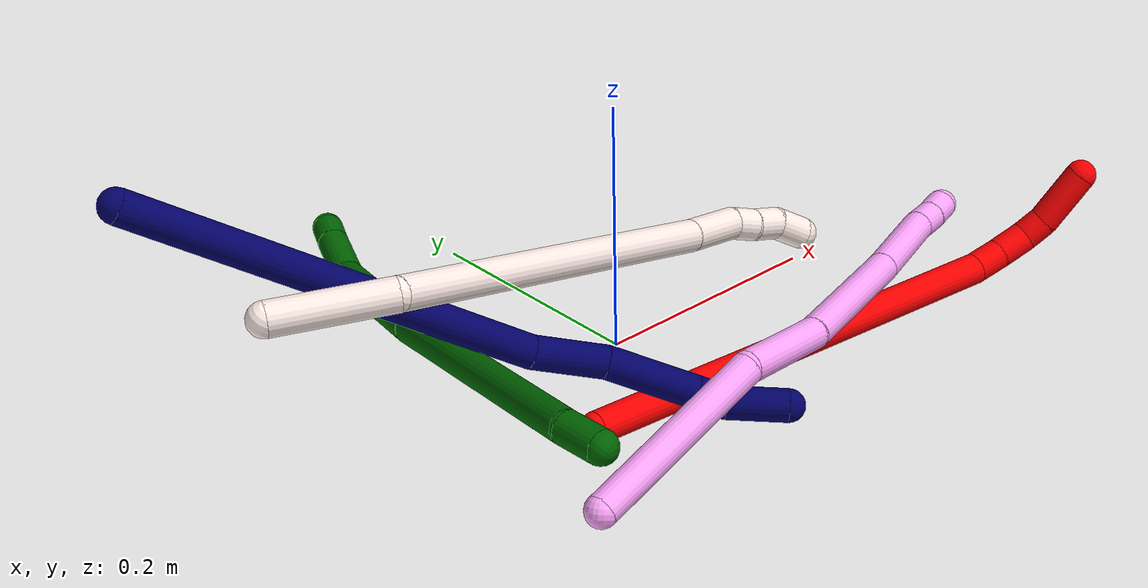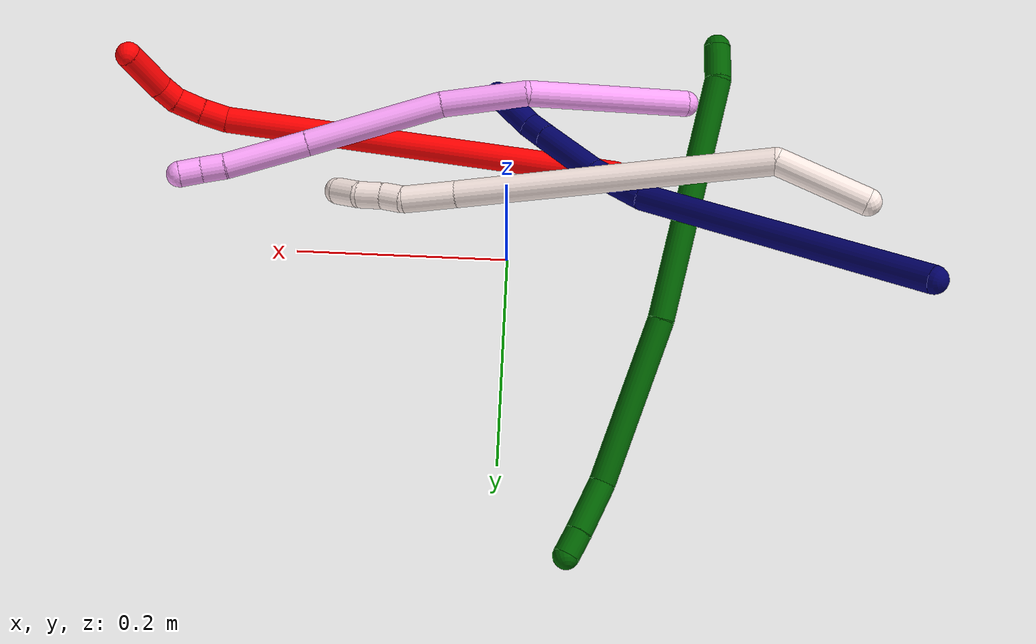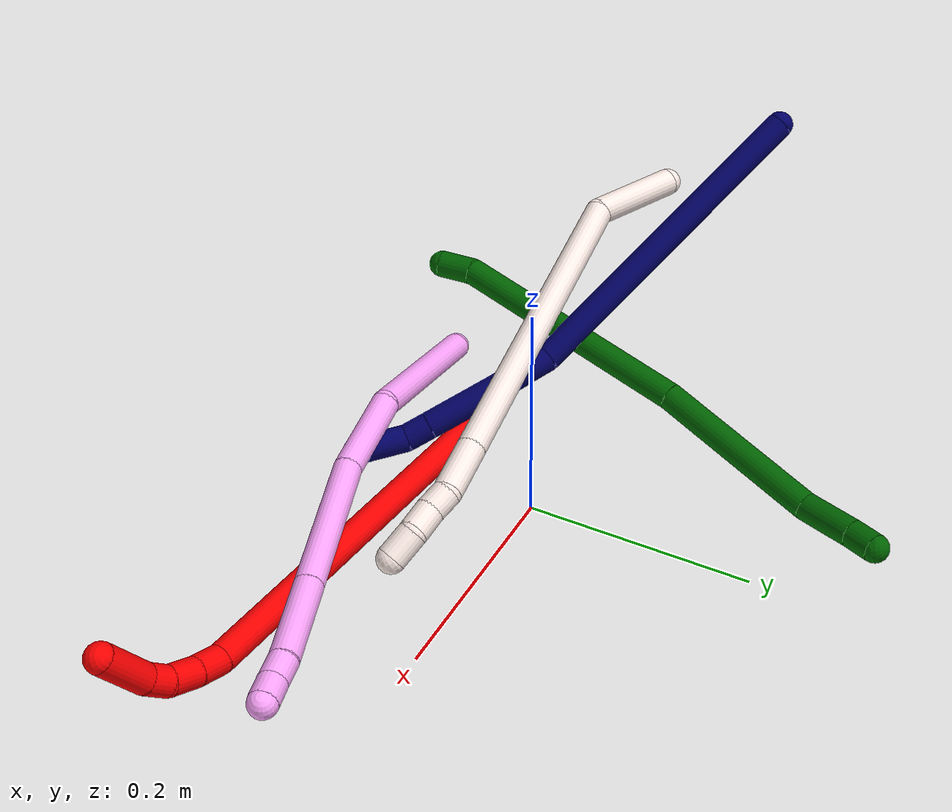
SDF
<sdf version="1.7">
 <world name="default">
  <model name="2">
   <static>0</static>
   <link name="2">
    <collision name="collision-cylinder-e_1_1_4">
     <pose>0.188315 -0.006573 0.024079 0.266497 1.43902 0.233825</pose>
     <geometry><cylinder><radius>0.0125</radius><length>0.379923</length></cylinder></geometry>
     <surface>
      <friction><ode><mu>1.16</mu><mu2>1.16</mu2><slip1>0</slip1><slip2>0</slip2></ode></friction>
      <contact><ode><kp>1e+06</kp><kd>1</kd><max_vel>0</max_vel><min_depth>0.001</min_depth></ode></contact>
     </surface>
    </collision>
    <visual name="visual-cylinder-e_1_1_4">
     <pose>0.188315 -0.006573 0.024079 0.266497 1.43902 0.233825</pose>
     <geometry><cylinder><radius>0.0125</radius><length>0.379923</length></cylinder></geometry>
     <material><ambient>1 0 0 1</ambient></material>
    </visual>
    <collision name="collision-cylinder-e_2_4_5">
     <pose>0.388958 -0.010228 0.048874 -1.33031 1.33172 -1.10446</pose>
     <geometry><cylinder><radius>0.0125</radius><length>0.025379</length></cylinder></geometry>
     <surface>
      <friction><ode><mu>1.16</mu><mu2>1.16</mu2><slip1>0</slip1><slip2>0</slip2></ode></friction>
      <contact><ode><kp>1e+06</kp><kd>1</kd><max_vel>0</max_vel><min_depth>0.001</min_depth></ode></contact>
     </surface>
    </collision>
    <visual name="visual-cylinder-e_2_4_5">
     <pose>0.388958 -0.010228 0.048874 -1.33031 1.33172 -1.10446</pose>
     <geometry><cylinder><radius>0.0125</radius><length>0.025379</length></cylinder></geometry>
     <material><ambient>1 0 0 1</ambient></material>
    </visual>
    <collision name="collision-cylinder-e_3_5_6">
     <pose>0.413849 -0.002646 0.050125 -1.45635 1.21315 -1.10804</pose>
     <geometry><cylinder><radius>0.0125</radius><length>0.026821</length></cylinder></geometry>
     <surface>
      <friction><ode><mu>1.16</mu><mu2>1.16</mu2><slip1>0</slip1><slip2>0</slip2></ode></friction>
      <contact><ode><kp>1e+06</kp><kd>1</kd><max_vel>0</max_vel><min_depth>0.001</min_depth></ode></contact>
     </surface>
    </collision>
    <visual name="visual-cylinder-e_3_5_6">
     <pose>0.413849 -0.002646 0.050125 -1.45635 1.21315 -1.10804</pose>
     <geometry><cylinder><radius>0.0125</radius><length>0.026821</length></cylinder></geometry>
     <material><ambient>1 0 0 1</ambient></material>
    </visual>
    <collision name="collision-cylinder-e_4_6_7">
     <pose>0.43408 0.008692 0.050838 -1.54432 0.854495 -0.834701</pose>
     <geometry><cylinder><radius>0.0125</radius><length>0.020337</length></cylinder></geometry>
     <surface>
      <friction><ode><mu>1.16</mu><mu2>1.16</mu2><slip1>0</slip1><slip2>0</slip2></ode></friction>
      <contact><ode><kp>1e+06</kp><kd>1</kd><max_vel>0</max_vel><min_depth>0.001</min_depth></ode></contact>
     </surface>
    </collision>
    <visual name="visual-cylinder-e_4_6_7">
     <pose>0.43408 0.008692 0.050838 -1.54432 0.854495 -0.834701</pose>
     <geometry><cylinder><radius>0.0125</radius><length>0.020337</length></cylinder></geometry>
     <material><ambient>1 0 0 1</ambient></material>
    </visual>
    <collision name="collision-cylinder-e_5_7_2">
     <pose>0.456087 0.033931 0.047168 -1.77514 0.647488 -0.781989</pose>
     <geometry><cylinder><radius>0.0125</radius><length>0.04754</length></cylinder></geometry>
     <surface>
      <friction><ode><mu>1.16</mu><mu2>1.16</mu2><slip1>0</slip1><slip2>0</slip2></ode></friction>
      <contact><ode><kp>1e+06</kp><kd>1</kd><max_vel>0</max_vel><min_depth>0.001</min_depth></ode></contact>
     </surface>
    </collision>
    <visual name="visual-cylinder-e_5_7_2">
     <pose>0.456087 0.033931 0.047168 -1.77514 0.647488 -0.781989</pose>
     <geometry><cylinder><radius>0.0125</radius><length>0.04754</length></cylinder></geometry>
     <material><ambient>1 0 0 1</ambient></material>
    </visual>
    <collision name="collision-sphere-2">
     <pose>0.470425 0.052495 0.04332 0 -0 0</pose>
     <geometry><sphere><radius>0.0125</radius></sphere></geometry>
     <surface>
      <friction><ode><mu>1.16</mu><mu2>1.16</mu2><slip1>0</slip1><slip2>0</slip2></ode></friction>
      <contact><ode><kp>1e+06</kp><kd>1</kd><max_vel>0</max_vel><min_depth>0.001</min_depth></ode></contact>
     </surface>
    </collision>
    <visual name="visual-sphere-2">
     <pose>0.470425 0.052495 0.04332 0 -0 0</pose>
     <geometry><sphere><radius>0.0125</radius></sphere></geometry>
     <material><ambient>1 0 0 1</ambient></material>
    </visual>
    <collision name="collision-sphere-7">
     <pose>0.441749 0.015366 0.051015 0 -0 0</pose>
     <geometry><sphere><radius>0.0125</radius></sphere></geometry>
     <surface>
      <friction><ode><mu>1.16</mu><mu2>1.16</mu2><slip1>0</slip1><slip2>0</slip2></ode></friction>
      <contact><ode><kp>1e+06</kp><kd>1</kd><max_vel>0</max_vel><min_depth>0.001</min_depth></ode></contact>
     </surface>
    </collision>
    <visual name="visual-sphere-7">
     <pose>0.441749 0.015366 0.051015 0 -0 0</pose>
     <geometry><sphere><radius>0.0125</radius></sphere></geometry>
     <material><ambient>1 0 0 1</ambient></material>
    </visual>
    <collision name="collision-sphere-6">
     <pose>0.426411 0.002018 0.050662 0 -0 0</pose>
     <geometry><sphere><radius>0.0125</radius></sphere></geometry>
     <surface>
      <friction><ode><mu>1.16</mu><mu2>1.16</mu2><slip1>0</slip1><slip2>0</slip2></ode></friction>
      <contact><ode><kp>1e+06</kp><kd>1</kd><max_vel>0</max_vel><min_depth>0.001</min_depth></ode></contact>
     </surface>
    </collision>
    <visual name="visual-sphere-6">
     <pose>0.426411 0.002018 0.050662 0 -0 0</pose>
     <geometry><sphere><radius>0.0125</radius></sphere></geometry>
     <material><ambient>1 0 0 1</ambient></material>
    </visual>
    <collision name="collision-sphere-5">
     <pose>0.401287 -0.00731 0.049589 0 -0 0</pose>
     <geometry><sphere><radius>0.0125</radius></sphere></geometry>
     <surface>
      <friction><ode><mu>1.16</mu><mu2>1.16</mu2><slip1>0</slip1><slip2>0</slip2></ode></friction>
      <contact><ode><kp>1e+06</kp><kd>1</kd><max_vel>0</max_vel><min_depth>0.001</min_depth></ode></contact>
     </surface>
    </collision>
    <visual name="visual-sphere-5">
     <pose>0.401287 -0.00731 0.049589 0 -0 0</pose>
     <geometry><sphere><radius>0.0125</radius></sphere></geometry>
     <material><ambient>1 0 0 1</ambient></material>
    </visual>
    <collision name="collision-sphere-1">
     <geometry><sphere><radius>0.0125</radius></sphere></geometry>
     <surface>
      <friction><ode><mu>1.16</mu><mu2>1.16</mu2><slip1>0</slip1><slip2>0</slip2></ode></friction>
      <contact><ode><kp>1e+06</kp><kd>1</kd><max_vel>0</max_vel><min_depth>0.001</min_depth></ode></contact>
     </surface>
    </collision>
    <visual name="visual-sphere-1">
     <geometry><sphere><radius>0.0125</radius></sphere></geometry>
     <material><ambient>1 0 0 1</ambient></material>
    </visual>
    <collision name="collision-sphere-4">
     <pose>0.37663 -0.013147 0.048158 0 -0 0</pose>
     <geometry><sphere><radius>0.0125</radius></sphere></geometry>
     <surface>
      <friction><ode><mu>1.16</mu><mu2>1.16</mu2><slip1>0</slip1><slip2>0</slip2></ode></friction>
      <contact><ode><kp>1e+06</kp><kd>1</kd><max_vel>0</max_vel><min_depth>0.001</min_depth></ode></contact>
     </surface>
    </collision>
    <visual name="visual-sphere-4">
     <pose>0.37663 -0.013147 0.048158 0 -0 0</pose>
     <geometry><sphere><radius>0.0125</radius></sphere></geometry>
     <material><ambient>1 0 0 1</ambient></material>
    </visual>
    <inertial>
     <pose>0.246053 -0.002076 0.030018 0 -0 0</pose>
     <mass>0.5</mass>
     <inertia>
      <ixx>0.000762</ixx>
      <ixy>0</ixy>
      <ixz>0</ixz>
      <iyy>0.004724</iyy>
      <iyz>0</iyz>
      <izz>-0.004406</izz>
     </inertia>
    </inertial>
   </link>
   <pose>-0.1007 -0.088553 0.011497 2.15232 -0.099073 -0.016593</pose>
  </model>
  <model name="4">
   <static>0</static>
   <link name="4">
    <collision name="collision-cylinder-e_1_1_4">
     <pose>0.063424 0.019611 0.044078 -0.41861 0.920508 -0.209843</pose>
     <geometry><cylinder><radius>0.0125</radius><length>0.159375</length></cylinder></geometry>
     <surface>
      <friction><ode><mu>1.16</mu><mu2>1.16</mu2><slip1>0</slip1><slip2>0</slip2></ode></friction>
      <contact><ode><kp>1e+06</kp><kd>1</kd><max_vel>0</max_vel><min_depth>0.001</min_depth></ode></contact>
     </surface>
    </collision>
    <visual name="visual-cylinder-e_1_1_4">
     <pose>0.063424 0.019611 0.044078 -0.41861 0.920508 -0.209843</pose>
     <geometry><cylinder><radius>0.0125</radius><length>0.159375</length></cylinder></geometry>
     <material><ambient>1 0.65098 0.996078 1</ambient></material>
    </visual>
    <collision name="collision-cylinder-e_2_4_5">
     <pose>0.163756 0.055548 0.097233 -1.06341 1.10227 -0.69386</pose>
     <geometry><cylinder><radius>0.0125</radius><length>0.082732</length></cylinder></geometry>
     <surface>
      <friction><ode><mu>1.16</mu><mu2>1.16</mu2><slip1>0</slip1><slip2>0</slip2></ode></friction>
      <contact><ode><kp>1e+06</kp><kd>1</kd><max_vel>0</max_vel><min_depth>0.001</min_depth></ode></contact>
     </surface>
    </collision>
    <visual name="visual-cylinder-e_2_4_5">
     <pose>0.163756 0.055548 0.097233 -1.06341 1.10227 -0.69386</pose>
     <geometry><cylinder><radius>0.0125</radius><length>0.082732</length></cylinder></geometry>
     <material><ambient>1 0.65098 0.996078 1</ambient></material>
    </visual>
    <collision name="collision-cylinder-e_3_5_6">
     <pose>0.253405 0.108123 0.125556 -1.08269 0.909505 -0.571839</pose>
     <geometry><cylinder><radius>0.0125</radius><length>0.133656</length></cylinder></geometry>
     <surface>
      <friction><ode><mu>1.16</mu><mu2>1.16</mu2><slip1>0</slip1><slip2>0</slip2></ode></friction>
      <contact><ode><kp>1e+06</kp><kd>1</kd><max_vel>0</max_vel><min_depth>0.001</min_depth></ode></contact>
     </surface>
    </collision>
    <visual name="visual-cylinder-e_3_5_6">
     <pose>0.253405 0.108123 0.125556 -1.08269 0.909505 -0.571839</pose>
     <geometry><cylinder><radius>0.0125</radius><length>0.133656</length></cylinder></geometry>
     <material><ambient>1 0.65098 0.996078 1</ambient></material>
    </visual>
    <collision name="collision-cylinder-e_4_6_7">
     <pose>0.336674 0.165978 0.159047 -0.987946 0.867626 -0.488937</pose>
     <geometry><cylinder><radius>0.0125</radius><length>0.080042</length></cylinder></geometry>
     <surface>
      <friction><ode><mu>1.16</mu><mu2>1.16</mu2><slip1>0</slip1><slip2>0</slip2></ode></friction>
      <contact><ode><kp>1e+06</kp><kd>1</kd><max_vel>0</max_vel><min_depth>0.001</min_depth></ode></contact>
     </surface>
    </collision>
    <visual name="visual-cylinder-e_4_6_7">
     <pose>0.336674 0.165978 0.159047 -0.987946 0.867626 -0.488937</pose>
     <geometry><cylinder><radius>0.0125</radius><length>0.080042</length></cylinder></geometry>
     <material><ambient>1 0.65098 0.996078 1</ambient></material>
    </visual>
    <collision name="collision-cylinder-e_5_7_8">
     <pose>0.376629 0.192544 0.176985 -0.930529 0.990211 -0.529425</pose>
     <geometry><cylinder><radius>0.0125</radius><length>0.02255</length></cylinder></geometry>
     <surface>
      <friction><ode><mu>1.16</mu><mu2>1.16</mu2><slip1>0</slip1><slip2>0</slip2></ode></friction>
      <contact><ode><kp>1e+06</kp><kd>1</kd><max_vel>0</max_vel><min_depth>0.001</min_depth></ode></contact>
     </surface>
    </collision>
    <visual name="visual-cylinder-e_5_7_8">
     <pose>0.376629 0.192544 0.176985 -0.930529 0.990211 -0.529425</pose>
     <geometry><cylinder><radius>0.0125</radius><length>0.02255</length></cylinder></geometry>
     <material><ambient>1 0.65098 0.996078 1</ambient></material>
    </visual>
    <collision name="collision-cylinder-e_6_8_2">
     <pose>0.394591 0.202561 0.185007 -0.862999 0.908458 -0.442292</pose>
     <geometry><cylinder><radius>0.0125</radius><length>0.021645</length></cylinder></geometry>
     <surface>
      <friction><ode><mu>1.16</mu><mu2>1.16</mu2><slip1>0</slip1><slip2>0</slip2></ode></friction>
      <contact><ode><kp>1e+06</kp><kd>1</kd><max_vel>0</max_vel><min_depth>0.001</min_depth></ode></contact>
     </surface>
    </collision>
    <visual name="visual-cylinder-e_6_8_2">
     <pose>0.394591 0.202561 0.185007 -0.862999 0.908458 -0.442292</pose>
     <geometry><cylinder><radius>0.0125</radius><length>0.021645</length></cylinder></geometry>
     <material><ambient>1 0.65098 0.996078 1</ambient></material>
    </visual>
    <collision name="collision-sphere-2">
     <pose>0.403125 0.207617 0.189334 0 -0 0</pose>
     <geometry><sphere><radius>0.0125</radius></sphere></geometry>
     <surface>
      <friction><ode><mu>1.16</mu><mu2>1.16</mu2><slip1>0</slip1><slip2>0</slip2></ode></friction>
      <contact><ode><kp>1e+06</kp><kd>1</kd><max_vel>0</max_vel><min_depth>0.001</min_depth></ode></contact>
     </surface>
    </collision>
    <visual name="visual-sphere-2">
     <pose>0.403125 0.207617 0.189334 0 -0 0</pose>
     <geometry><sphere><radius>0.0125</radius></sphere></geometry>
     <material><ambient>1 0.65098 0.996078 1</ambient></material>
    </visual>
    <collision name="collision-sphere-4">
     <pose>0.126848 0.039221 0.088157 0 -0 0</pose>
     <geometry><sphere><radius>0.0125</radius></sphere></geometry>
     <surface>
      <friction><ode><mu>1.16</mu><mu2>1.16</mu2><slip1>0</slip1><slip2>0</slip2></ode></friction>
      <contact><ode><kp>1e+06</kp><kd>1</kd><max_vel>0</max_vel><min_depth>0.001</min_depth></ode></contact>
     </surface>
    </collision>
    <visual name="visual-sphere-4">
     <pose>0.126848 0.039221 0.088157 0 -0 0</pose>
     <geometry><sphere><radius>0.0125</radius></sphere></geometry>
     <material><ambient>1 0.65098 0.996078 1</ambient></material>
    </visual>
    <collision name="collision-sphere-1">
     <geometry><sphere><radius>0.0125</radius></sphere></geometry>
     <surface>
      <friction><ode><mu>1.16</mu><mu2>1.16</mu2><slip1>0</slip1><slip2>0</slip2></ode></friction>
      <contact><ode><kp>1e+06</kp><kd>1</kd><max_vel>0</max_vel><min_depth>0.001</min_depth></ode></contact>
     </surface>
    </collision>
    <visual name="visual-sphere-1">
     <geometry><sphere><radius>0.0125</radius></sphere></geometry>
     <material><ambient>1 0.65098 0.996078 1</ambient></material>
    </visual>
    <collision name="collision-sphere-8">
     <pose>0.386056 0.197504 0.18068 0 -0 0</pose>
     <geometry><sphere><radius>0.0125</radius></sphere></geometry>
     <surface>
      <friction><ode><mu>1.16</mu><mu2>1.16</mu2><slip1>0</slip1><slip2>0</slip2></ode></friction>
      <contact><ode><kp>1e+06</kp><kd>1</kd><max_vel>0</max_vel><min_depth>0.001</min_depth></ode></contact>
     </surface>
    </collision>
    <visual name="visual-sphere-8">
     <pose>0.386056 0.197504 0.18068 0 -0 0</pose>
     <geometry><sphere><radius>0.0125</radius></sphere></geometry>
     <material><ambient>1 0.65098 0.996078 1</ambient></material>
    </visual>
    <collision name="collision-sphere-5">
     <pose>0.200665 0.071874 0.10631 0 -0 0</pose>
     <geometry><sphere><radius>0.0125</radius></sphere></geometry>
     <surface>
      <friction><ode><mu>1.16</mu><mu2>1.16</mu2><slip1>0</slip1><slip2>0</slip2></ode></friction>
      <contact><ode><kp>1e+06</kp><kd>1</kd><max_vel>0</max_vel><min_depth>0.001</min_depth></ode></contact>
     </surface>
    </collision>
    <visual name="visual-sphere-5">
     <pose>0.200665 0.071874 0.10631 0 -0 0</pose>
     <geometry><sphere><radius>0.0125</radius></sphere></geometry>
     <material><ambient>1 0.65098 0.996078 1</ambient></material>
    </visual>
    <collision name="collision-sphere-6">
     <pose>0.306146 0.144372 0.144803 0 -0 0</pose>
     <geometry><sphere><radius>0.0125</radius></sphere></geometry>
     <surface>
      <friction><ode><mu>1.16</mu><mu2>1.16</mu2><slip1>0</slip1><slip2>0</slip2></ode></friction>
      <contact><ode><kp>1e+06</kp><kd>1</kd><max_vel>0</max_vel><min_depth>0.001</min_depth></ode></contact>
     </surface>
    </collision>
    <visual name="visual-sphere-6">
     <pose>0.306146 0.144372 0.144803 0 -0 0</pose>
     <geometry><sphere><radius>0.0125</radius></sphere></geometry>
     <material><ambient>1 0.65098 0.996078 1</ambient></material>
    </visual>
    <collision name="collision-sphere-7">
     <pose>0.367201 0.187585 0.173291 0 -0 0</pose>
     <geometry><sphere><radius>0.0125</radius></sphere></geometry>
     <surface>
      <friction><ode><mu>1.16</mu><mu2>1.16</mu2><slip1>0</slip1><slip2>0</slip2></ode></friction>
      <contact><ode><kp>1e+06</kp><kd>1</kd><max_vel>0</max_vel><min_depth>0.001</min_depth></ode></contact>
     </surface>
    </collision>
    <visual name="visual-sphere-7">
     <pose>0.367201 0.187585 0.173291 0 -0 0</pose>
     <geometry><sphere><radius>0.0125</radius></sphere></geometry>
     <material><ambient>1 0.65098 0.996078 1</ambient></material>
    </visual>
    <inertial>
     <pose>0.203014 0.088368 0.105153 0 -0 0</pose>
     <mass>0.5</mass>
     <inertia>
      <ixx>0.000245</ixx>
      <ixy>0</ixy>
      <ixz>0</ixz>
      <iyy>0.000446</iyy>
      <iyz>0</iyz>
      <izz>-0.000744</izz>
     </inertia>
    </inertial>
   </link>
   <pose>-0.166046 -0.165138 0.01208 -0.294125 0.243834 -0.329767</pose>
  </model>
  <model name="6">
   <static>0</static>
   <link name="6">
    <collision name="collision-cylinder-e_1_1_4">
     <pose>-0.001106 0.006043 0.015109 -0.380496 -0.067887 0.013078</pose>
     <geometry><cylinder><radius>0.0125</radius><length>0.03262</length></cylinder></geometry>
     <surface>
      <friction><ode><mu>1.16</mu><mu2>1.16</mu2><slip1>0</slip1><slip2>0</slip2></ode></friction>
      <contact><ode><kp>1e+06</kp><kd>1</kd><max_vel>0</max_vel><min_depth>0.001</min_depth></ode></contact>
     </surface>
    </collision>
    <visual name="visual-cylinder-e_1_1_4">
     <pose>-0.001106 0.006043 0.015109 -0.380496 -0.067887 0.013078</pose>
     <geometry><cylinder><radius>0.0125</radius><length>0.03262</length></cylinder></geometry>
     <material><ambient>0 0.392157 0.003922 1</ambient></material>
    </visual>
    <collision name="collision-cylinder-e_2_4_5">
     <pose>0.006821 0.081228 0.123282 -0.638963 0.077765 -0.025737</pose>
     <geometry><cylinder><radius>0.0125</radius><length>0.232578</length></cylinder></geometry>
     <surface>
      <friction><ode><mu>1.16</mu><mu2>1.16</mu2><slip1>0</slip1><slip2>0</slip2></ode></friction>
      <contact><ode><kp>1e+06</kp><kd>1</kd><max_vel>0</max_vel><min_depth>0.001</min_depth></ode></contact>
     </surface>
    </collision>
    <visual name="visual-cylinder-e_2_4_5">
     <pose>0.006821 0.081228 0.123282 -0.638963 0.077765 -0.025737</pose>
     <geometry><cylinder><radius>0.0125</radius><length>0.232578</length></cylinder></geometry>
     <material><ambient>0 0.392157 0.003922 1</ambient></material>
    </visual>
    <collision name="collision-cylinder-e_3_5_6">
     <pose>0.028612 0.202304 0.274973 -0.724963 0.161459 -0.061346</pose>
     <geometry><cylinder><radius>0.0125</radius><length>0.158708</length></cylinder></geometry>
     <surface>
      <friction><ode><mu>1.16</mu><mu2>1.16</mu2><slip1>0</slip1><slip2>0</slip2></ode></friction>
      <contact><ode><kp>1e+06</kp><kd>1</kd><max_vel>0</max_vel><min_depth>0.001</min_depth></ode></contact>
     </surface>
    </collision>
    <visual name="visual-cylinder-e_3_5_6">
     <pose>0.028612 0.202304 0.274973 -0.724963 0.161459 -0.061346</pose>
     <geometry><cylinder><radius>0.0125</radius><length>0.158708</length></cylinder></geometry>
     <material><ambient>0 0.392157 0.003922 1</ambient></material>
    </visual>
    <collision name="collision-cylinder-e_4_6_7">
     <pose>0.050601 0.26543 0.354928 -0.483173 0.366021 -0.091145</pose>
     <geometry><cylinder><radius>0.0125</radius><length>0.05159</length></cylinder></geometry>
     <surface>
      <friction><ode><mu>1.16</mu><mu2>1.16</mu2><slip1>0</slip1><slip2>0</slip2></ode></friction>
      <contact><ode><kp>1e+06</kp><kd>1</kd><max_vel>0</max_vel><min_depth>0.001</min_depth></ode></contact>
     </surface>
    </collision>
    <visual name="visual-cylinder-e_4_6_7">
     <pose>0.050601 0.26543 0.354928 -0.483173 0.366021 -0.091145</pose>
     <geometry><cylinder><radius>0.0125</radius><length>0.05159</length></cylinder></geometry>
     <material><ambient>0 0.392157 0.003922 1</ambient></material>
    </visual>
    <collision name="collision-cylinder-e_5_7_2">
     <pose>0.064522 0.282244 0.38608 -0.519941 0.392714 -0.105723</pose>
     <geometry><cylinder><radius>0.0125</radius><length>0.024503</length></cylinder></geometry>
     <surface>
      <friction><ode><mu>1.16</mu><mu2>1.16</mu2><slip1>0</slip1><slip2>0</slip2></ode></friction>
      <contact><ode><kp>1e+06</kp><kd>1</kd><max_vel>0</max_vel><min_depth>0.001</min_depth></ode></contact>
     </surface>
    </collision>
    <visual name="visual-cylinder-e_5_7_2">
     <pose>0.064522 0.282244 0.38608 -0.519941 0.392714 -0.105723</pose>
     <geometry><cylinder><radius>0.0125</radius><length>0.024503</length></cylinder></geometry>
     <material><ambient>0 0.392157 0.003922 1</ambient></material>
    </visual>
    <collision name="collision-sphere-2">
     <pose>0.069211 0.287868 0.395903 0 -0 0</pose>
     <geometry><sphere><radius>0.0125</radius></sphere></geometry>
     <surface>
      <friction><ode><mu>1.16</mu><mu2>1.16</mu2><slip1>0</slip1><slip2>0</slip2></ode></friction>
      <contact><ode><kp>1e+06</kp><kd>1</kd><max_vel>0</max_vel><min_depth>0.001</min_depth></ode></contact>
     </surface>
    </collision>
    <visual name="visual-sphere-2">
     <pose>0.069211 0.287868 0.395903 0 -0 0</pose>
     <geometry><sphere><radius>0.0125</radius></sphere></geometry>
     <material><ambient>0 0.392157 0.003922 1</ambient></material>
    </visual>
    <collision name="collision-sphere-7">
     <pose>0.059833 0.276621 0.376257 0 -0 0</pose>
     <geometry><sphere><radius>0.0125</radius></sphere></geometry>
     <surface>
      <friction><ode><mu>1.16</mu><mu2>1.16</mu2><slip1>0</slip1><slip2>0</slip2></ode></friction>
      <contact><ode><kp>1e+06</kp><kd>1</kd><max_vel>0</max_vel><min_depth>0.001</min_depth></ode></contact>
     </surface>
    </collision>
    <visual name="visual-sphere-7">
     <pose>0.059833 0.276621 0.376257 0 -0 0</pose>
     <geometry><sphere><radius>0.0125</radius></sphere></geometry>
     <material><ambient>0 0.392157 0.003922 1</ambient></material>
    </visual>
    <collision name="collision-sphere-6">
     <pose>0.041369 0.25424 0.333599 0 -0 0</pose>
     <geometry><sphere><radius>0.0125</radius></sphere></geometry>
     <surface>
      <friction><ode><mu>1.16</mu><mu2>1.16</mu2><slip1>0</slip1><slip2>0</slip2></ode></friction>
      <contact><ode><kp>1e+06</kp><kd>1</kd><max_vel>0</max_vel><min_depth>0.001</min_depth></ode></contact>
     </surface>
    </collision>
    <visual name="visual-sphere-6">
     <pose>0.041369 0.25424 0.333599 0 -0 0</pose>
     <geometry><sphere><radius>0.0125</radius></sphere></geometry>
     <material><ambient>0 0.392157 0.003922 1</ambient></material>
    </visual>
    <collision name="collision-sphere-5">
     <pose>0.015856 0.150369 0.216347 0 -0 0</pose>
     <geometry><sphere><radius>0.0125</radius></sphere></geometry>
     <surface>
      <friction><ode><mu>1.16</mu><mu2>1.16</mu2><slip1>0</slip1><slip2>0</slip2></ode></friction>
      <contact><ode><kp>1e+06</kp><kd>1</kd><max_vel>0</max_vel><min_depth>0.001</min_depth></ode></contact>
     </surface>
    </collision>
    <visual name="visual-sphere-5">
     <pose>0.015856 0.150369 0.216347 0 -0 0</pose>
     <geometry><sphere><radius>0.0125</radius></sphere></geometry>
     <material><ambient>0 0.392157 0.003922 1</ambient></material>
    </visual>
    <collision name="collision-sphere-1">
     <geometry><sphere><radius>0.0125</radius></sphere></geometry>
     <surface>
      <friction><ode><mu>1.16</mu><mu2>1.16</mu2><slip1>0</slip1><slip2>0</slip2></ode></friction>
      <contact><ode><kp>1e+06</kp><kd>1</kd><max_vel>0</max_vel><min_depth>0.001</min_depth></ode></contact>
     </surface>
    </collision>
    <visual name="visual-sphere-1">
     <geometry><sphere><radius>0.0125</radius></sphere></geometry>
     <material><ambient>0 0.392157 0.003922 1</ambient></material>
    </visual>
    <collision name="collision-sphere-4">
     <pose>-0.002213 0.012087 0.030218 0 -0 0</pose>
     <geometry><sphere><radius>0.0125</radius></sphere></geometry>
     <surface>
      <friction><ode><mu>1.16</mu><mu2>1.16</mu2><slip1>0</slip1><slip2>0</slip2></ode></friction>
      <contact><ode><kp>1e+06</kp><kd>1</kd><max_vel>0</max_vel><min_depth>0.001</min_depth></ode></contact>
     </surface>
    </collision>
    <visual name="visual-sphere-4">
     <pose>-0.002213 0.012087 0.030218 0 -0 0</pose>
     <geometry><sphere><radius>0.0125</radius></sphere></geometry>
     <material><ambient>0 0.392157 0.003922 1</ambient></material>
    </visual>
    <inertial>
     <pose>0.020566 0.143612 0.201154 0 -0 0</pose>
     <mass>0.5</mass>
     <inertia>
      <ixx>0.001363</ixx>
      <ixy>0</ixy>
      <ixz>0</ixz>
      <iyy>0.001097</iyy>
      <iyz>0</iyz>
      <izz>-0.00097</izz>
     </inertia>
    </inertial>
   </link>
   <pose>-0.18859 -0.190566 0.086345 -1.1575 -0.404819 -0.036511</pose>
  </model>
  <model name="7">
   <static>0</static>
   <link name="7">
    <collision name="collision-cylinder-e_1_1_4">
     <pose>0.034775 -0.0029 -0.149362 3.12218 0.228706 2.97294</pose>
     <geometry><cylinder><radius>0.0125</radius><length>0.306769</length></cylinder></geometry>
     <surface>
      <friction><ode><mu>1.16</mu><mu2>1.16</mu2><slip1>0</slip1><slip2>0</slip2></ode></friction>
      <contact><ode><kp>1e+06</kp><kd>1</kd><max_vel>0</max_vel><min_depth>0.001</min_depth></ode></contact>
     </surface>
    </collision>
    <visual name="visual-cylinder-e_1_1_4">
     <pose>0.034775 -0.0029 -0.149362 3.12218 0.228706 2.97294</pose>
     <geometry><cylinder><radius>0.0125</radius><length>0.306769</length></cylinder></geometry>
     <material><ambient>0.003922 0 0.403922 1</ambient></material>
    </visual>
    <collision name="collision-cylinder-e_2_4_5">
     <pose>0.080127 -0.012256 -0.323394 2.88567 0.393197 1.99449</pose>
     <geometry><cylinder><radius>0.0125</radius><length>0.055214</length></cylinder></geometry>
     <surface>
      <friction><ode><mu>1.16</mu><mu2>1.16</mu2><slip1>0</slip1><slip2>0</slip2></ode></friction>
      <contact><ode><kp>1e+06</kp><kd>1</kd><max_vel>0</max_vel><min_depth>0.001</min_depth></ode></contact>
     </surface>
    </collision>
    <visual name="visual-cylinder-e_2_4_5">
     <pose>0.080127 -0.012256 -0.323394 2.88567 0.393197 1.99449</pose>
     <geometry><cylinder><radius>0.0125</radius><length>0.055214</length></cylinder></geometry>
     <material><ambient>0.003922 0 0.403922 1</ambient></material>
    </visual>
    <collision name="collision-cylinder-e_3_5_6">
     <pose>0.097445 -0.028983 -0.380028 2.83064 0.198129 1.13022</pose>
     <geometry><cylinder><radius>0.0125</radius><length>0.068488</length></cylinder></geometry>
     <surface>
      <friction><ode><mu>1.16</mu><mu2>1.16</mu2><slip1>0</slip1><slip2>0</slip2></ode></friction>
      <contact><ode><kp>1e+06</kp><kd>1</kd><max_vel>0</max_vel><min_depth>0.001</min_depth></ode></contact>
     </surface>
    </collision>
    <visual name="visual-cylinder-e_3_5_6">
     <pose>0.097445 -0.028983 -0.380028 2.83064 0.198129 1.13022</pose>
     <geometry><cylinder><radius>0.0125</radius><length>0.068488</length></cylinder></geometry>
     <material><ambient>0.003922 0 0.403922 1</ambient></material>
    </visual>
    <collision name="collision-cylinder-e_4_6_7">
     <pose>0.106302 -0.042911 -0.423144 2.82488 0.178396 1.02105</pose>
     <geometry><cylinder><radius>0.0125</radius><length>0.023851</length></cylinder></geometry>
     <surface>
      <friction><ode><mu>1.16</mu><mu2>1.16</mu2><slip1>0</slip1><slip2>0</slip2></ode></friction>
      <contact><ode><kp>1e+06</kp><kd>1</kd><max_vel>0</max_vel><min_depth>0.001</min_depth></ode></contact>
     </surface>
    </collision>
    <visual name="visual-cylinder-e_4_6_7">
     <pose>0.106302 -0.042911 -0.423144 2.82488 0.178396 1.02105</pose>
     <geometry><cylinder><radius>0.0125</radius><length>0.023851</length></cylinder></geometry>
     <material><ambient>0.003922 0 0.403922 1</ambient></material>
    </visual>
    <collision name="collision-cylinder-e_5_7_2">
     <pose>0.117823 -0.057643 -0.451917 2.58035 0.424439 1.28387</pose>
     <geometry><cylinder><radius>0.0125</radius><length>0.045678</length></cylinder></geometry>
     <surface>
      <friction><ode><mu>1.16</mu><mu2>1.16</mu2><slip1>0</slip1><slip2>0</slip2></ode></friction>
      <contact><ode><kp>1e+06</kp><kd>1</kd><max_vel>0</max_vel><min_depth>0.001</min_depth></ode></contact>
     </surface>
    </collision>
    <visual name="visual-cylinder-e_5_7_2">
     <pose>0.117823 -0.057643 -0.451917 2.58035 0.424439 1.28387</pose>
     <geometry><cylinder><radius>0.0125</radius><length>0.045678</length></cylinder></geometry>
     <material><ambient>0.003922 0 0.403922 1</ambient></material>
    </visual>
    <collision name="collision-sphere-2">
     <pose>0.127229 -0.068721 -0.469537 0 -0 0</pose>
     <geometry><sphere><radius>0.0125</radius></sphere></geometry>
     <surface>
      <friction><ode><mu>1.16</mu><mu2>1.16</mu2><slip1>0</slip1><slip2>0</slip2></ode></friction>
      <contact><ode><kp>1e+06</kp><kd>1</kd><max_vel>0</max_vel><min_depth>0.001</min_depth></ode></contact>
     </surface>
    </collision>
    <visual name="visual-sphere-2">
     <pose>0.127229 -0.068721 -0.469537 0 -0 0</pose>
     <geometry><sphere><radius>0.0125</radius></sphere></geometry>
     <material><ambient>0.003922 0 0.403922 1</ambient></material>
    </visual>
    <collision name="collision-sphere-7">
     <pose>0.108418 -0.046566 -0.434297 0 -0 0</pose>
     <geometry><sphere><radius>0.0125</radius></sphere></geometry>
     <surface>
      <friction><ode><mu>1.16</mu><mu2>1.16</mu2><slip1>0</slip1><slip2>0</slip2></ode></friction>
      <contact><ode><kp>1e+06</kp><kd>1</kd><max_vel>0</max_vel><min_depth>0.001</min_depth></ode></contact>
     </surface>
    </collision>
    <visual name="visual-sphere-7">
     <pose>0.108418 -0.046566 -0.434297 0 -0 0</pose>
     <geometry><sphere><radius>0.0125</radius></sphere></geometry>
     <material><ambient>0.003922 0 0.403922 1</ambient></material>
    </visual>
    <collision name="collision-sphere-6">
     <pose>0.104185 -0.039256 -0.411992 0 -0 0</pose>
     <geometry><sphere><radius>0.0125</radius></sphere></geometry>
     <surface>
      <friction><ode><mu>1.16</mu><mu2>1.16</mu2><slip1>0</slip1><slip2>0</slip2></ode></friction>
      <contact><ode><kp>1e+06</kp><kd>1</kd><max_vel>0</max_vel><min_depth>0.001</min_depth></ode></contact>
     </surface>
    </collision>
    <visual name="visual-sphere-6">
     <pose>0.104185 -0.039256 -0.411992 0 -0 0</pose>
     <geometry><sphere><radius>0.0125</radius></sphere></geometry>
     <material><ambient>0.003922 0 0.403922 1</ambient></material>
    </visual>
    <collision name="collision-sphere-5">
     <pose>0.090705 -0.018711 -0.348064 0 -0 0</pose>
     <geometry><sphere><radius>0.0125</radius></sphere></geometry>
     <surface>
      <friction><ode><mu>1.16</mu><mu2>1.16</mu2><slip1>0</slip1><slip2>0</slip2></ode></friction>
      <contact><ode><kp>1e+06</kp><kd>1</kd><max_vel>0</max_vel><min_depth>0.001</min_depth></ode></contact>
     </surface>
    </collision>
    <visual name="visual-sphere-5">
     <pose>0.090705 -0.018711 -0.348064 0 -0 0</pose>
     <geometry><sphere><radius>0.0125</radius></sphere></geometry>
     <material><ambient>0.003922 0 0.403922 1</ambient></material>
    </visual>
    <collision name="collision-sphere-1">
     <geometry><sphere><radius>0.0125</radius></sphere></geometry>
     <surface>
      <friction><ode><mu>1.16</mu><mu2>1.16</mu2><slip1>0</slip1><slip2>0</slip2></ode></friction>
      <contact><ode><kp>1e+06</kp><kd>1</kd><max_vel>0</max_vel><min_depth>0.001</min_depth></ode></contact>
     </surface>
    </collision>
    <visual name="visual-sphere-1">
     <geometry><sphere><radius>0.0125</radius></sphere></geometry>
     <material><ambient>0.003922 0 0.403922 1</ambient></material>
    </visual>
    <collision name="collision-sphere-4">
     <pose>0.06955 -0.005801 -0.298725 0 -0 0</pose>
     <geometry><sphere><radius>0.0125</radius></sphere></geometry>
     <surface>
      <friction><ode><mu>1.16</mu><mu2>1.16</mu2><slip1>0</slip1><slip2>0</slip2></ode></friction>
      <contact><ode><kp>1e+06</kp><kd>1</kd><max_vel>0</max_vel><min_depth>0.001</min_depth></ode></contact>
     </surface>
    </collision>
    <visual name="visual-sphere-4">
     <pose>0.06955 -0.005801 -0.298725 0 -0 0</pose>
     <geometry><sphere><radius>0.0125</radius></sphere></geometry>
     <material><ambient>0.003922 0 0.403922 1</ambient></material>
    </visual>
    <inertial>
     <pose>0.059366 -0.014416 -0.240876 0 -0 0</pose>
     <mass>0.5</mass>
     <inertia>
      <ixx>-0.001856</ixx>
      <ixy>0</ixy>
      <ixz>0</ixz>
      <iyy>0.002821</iyy>
      <iyz>0</iyz>
      <izz>-0.000538</izz>
     </inertia>
    </inertial>
   </link>
   <pose>-0.358929 0.075573 0.219682 -0.576146 -0.652327 0.208769</pose>
  </model>
  <model name="11">
   <static>0</static>
   <link name="11">
    <collision name="collision-cylinder-e_1_1_4">
     <pose>0.03804 -0.012294 0.017504 0.612315 1.05856 0.36567</pose>
     <geometry><cylinder><radius>0.0125</radius><length>0.087283</length></cylinder></geometry>
     <surface>
      <friction><ode><mu>1.16</mu><mu2>1.16</mu2><slip1>0</slip1><slip2>0</slip2></ode></friction>
      <contact><ode><kp>1e+06</kp><kd>1</kd><max_vel>0</max_vel><min_depth>0.001</min_depth></ode></contact>
     </surface>
    </collision>
    <visual name="visual-cylinder-e_1_1_4">
     <pose>0.03804 -0.012294 0.017504 0.612315 1.05856 0.36567</pose>
     <geometry><cylinder><radius>0.0125</radius><length>0.087283</length></cylinder></geometry>
     <material><ambient>1 0.933333 0.909804 1</ambient></material>
    </visual>
    <collision name="collision-cylinder-e_2_4_5">
     <pose>0.222025 -0.02084 0.035809 -1.36019 1.54454 -1.33458</pose>
     <geometry><cylinder><radius>0.0125</radius><length>0.291991</length></cylinder></geometry>
     <surface>
      <friction><ode><mu>1.16</mu><mu2>1.16</mu2><slip1>0</slip1><slip2>0</slip2></ode></friction>
      <contact><ode><kp>1e+06</kp><kd>1</kd><max_vel>0</max_vel><min_depth>0.001</min_depth></ode></contact>
     </surface>
    </collision>
    <visual name="visual-cylinder-e_2_4_5">
     <pose>0.222025 -0.02084 0.035809 -1.36019 1.54454 -1.33458</pose>
     <geometry><cylinder><radius>0.0125</radius><length>0.291991</length></cylinder></geometry>
     <material><ambient>1 0.933333 0.909804 1</ambient></material>
    </visual>
    <collision name="collision-cylinder-e_3_5_6">
     <pose>0.392693 -0.015225 0.037925 -0.957119 1.47868 -0.883739</pose>
     <geometry><cylinder><radius>0.0125</radius><length>0.049655</length></cylinder></geometry>
     <surface>
      <friction><ode><mu>1.16</mu><mu2>1.16</mu2><slip1>0</slip1><slip2>0</slip2></ode></friction>
      <contact><ode><kp>1e+06</kp><kd>1</kd><max_vel>0</max_vel><min_depth>0.001</min_depth></ode></contact>
     </surface>
    </collision>
    <visual name="visual-cylinder-e_3_5_6">
     <pose>0.392693 -0.015225 0.037925 -0.957119 1.47868 -0.883739</pose>
     <geometry><cylinder><radius>0.0125</radius><length>0.049655</length></cylinder></geometry>
     <material><ambient>1 0.933333 0.909804 1</ambient></material>
    </visual>
    <collision name="collision-cylinder-e_4_6_7">
     <pose>0.427162 -0.016347 0.039817 1.38016 1.26807 1.09108</pose>
     <geometry><cylinder><radius>0.0125</radius><length>0.020422</length></cylinder></geometry>
     <surface>
      <friction><ode><mu>1.16</mu><mu2>1.16</mu2><slip1>0</slip1><slip2>0</slip2></ode></friction>
      <contact><ode><kp>1e+06</kp><kd>1</kd><max_vel>0</max_vel><min_depth>0.001</min_depth></ode></contact>
     </surface>
    </collision>
    <visual name="visual-cylinder-e_4_6_7">
     <pose>0.427162 -0.016347 0.039817 1.38016 1.26807 1.09108</pose>
     <geometry><cylinder><radius>0.0125</radius><length>0.020422</length></cylinder></geometry>
     <material><ambient>1 0.933333 0.909804 1</ambient></material>
    </visual>
    <collision name="collision-cylinder-e_5_7_8">
     <pose>0.448886 -0.020827 0.041206 1.07222 1.43001 0.952551</pose>
     <geometry><cylinder><radius>0.0125</radius><length>0.024195</length></cylinder></geometry>
     <surface>
      <friction><ode><mu>1.16</mu><mu2>1.16</mu2><slip1>0</slip1><slip2>0</slip2></ode></friction>
      <contact><ode><kp>1e+06</kp><kd>1</kd><max_vel>0</max_vel><min_depth>0.001</min_depth></ode></contact>
     </surface>
    </collision>
    <visual name="visual-cylinder-e_5_7_8">
     <pose>0.448886 -0.020827 0.041206 1.07222 1.43001 0.952551</pose>
     <geometry><cylinder><radius>0.0125</radius><length>0.024195</length></cylinder></geometry>
     <material><ambient>1 0.933333 0.909804 1</ambient></material>
    </visual>
    <collision name="collision-cylinder-e_6_8_2">
     <pose>0.472698 -0.028024 0.04048 1.83408 1.10764 1.35813</pose>
     <geometry><cylinder><radius>0.0125</radius><length>0.026454</length></cylinder></geometry>
     <surface>
      <friction><ode><mu>1.16</mu><mu2>1.16</mu2><slip1>0</slip1><slip2>0</slip2></ode></friction>
      <contact><ode><kp>1e+06</kp><kd>1</kd><max_vel>0</max_vel><min_depth>0.001</min_depth></ode></contact>
     </surface>
    </collision>
    <visual name="visual-cylinder-e_6_8_2">
     <pose>0.472698 -0.028024 0.04048 1.83408 1.10764 1.35813</pose>
     <geometry><cylinder><radius>0.0125</radius><length>0.026454</length></cylinder></geometry>
     <material><ambient>1 0.933333 0.909804 1</ambient></material>
    </visual>
    <collision name="collision-sphere-2">
     <pose>0.484531 -0.033729 0.038942 0 -0 0</pose>
     <geometry><sphere><radius>0.0125</radius></sphere></geometry>
     <surface>
      <friction><ode><mu>1.16</mu><mu2>1.16</mu2><slip1>0</slip1><slip2>0</slip2></ode></friction>
      <contact><ode><kp>1e+06</kp><kd>1</kd><max_vel>0</max_vel><min_depth>0.001</min_depth></ode></contact>
     </surface>
    </collision>
    <visual name="visual-sphere-2">
     <pose>0.484531 -0.033729 0.038942 0 -0 0</pose>
     <geometry><sphere><radius>0.0125</radius></sphere></geometry>
     <material><ambient>1 0.933333 0.909804 1</ambient></material>
    </visual>
    <collision name="collision-sphere-4">
     <pose>0.07608 -0.024588 0.035008 0 -0 0</pose>
     <geometry><sphere><radius>0.0125</radius></sphere></geometry>
     <surface>
      <friction><ode><mu>1.16</mu><mu2>1.16</mu2><slip1>0</slip1><slip2>0</slip2></ode></friction>
      <contact><ode><kp>1e+06</kp><kd>1</kd><max_vel>0</max_vel><min_depth>0.001</min_depth></ode></contact>
     </surface>
    </collision>
    <visual name="visual-sphere-4">
     <pose>0.07608 -0.024588 0.035008 0 -0 0</pose>
     <geometry><sphere><radius>0.0125</radius></sphere></geometry>
     <material><ambient>1 0.933333 0.909804 1</ambient></material>
    </visual>
    <collision name="collision-sphere-1">
     <geometry><sphere><radius>0.0125</radius></sphere></geometry>
     <surface>
      <friction><ode><mu>1.16</mu><mu2>1.16</mu2><slip1>0</slip1><slip2>0</slip2></ode></friction>
      <contact><ode><kp>1e+06</kp><kd>1</kd><max_vel>0</max_vel><min_depth>0.001</min_depth></ode></contact>
     </surface>
    </collision>
    <visual name="visual-sphere-1">
     <geometry><sphere><radius>0.0125</radius></sphere></geometry>
     <material><ambient>1 0.933333 0.909804 1</ambient></material>
    </visual>
    <collision name="collision-sphere-8">
     <pose>0.460864 -0.022318 0.042017 0 -0 0</pose>
     <geometry><sphere><radius>0.0125</radius></sphere></geometry>
     <surface>
      <friction><ode><mu>1.16</mu><mu2>1.16</mu2><slip1>0</slip1><slip2>0</slip2></ode></friction>
      <contact><ode><kp>1e+06</kp><kd>1</kd><max_vel>0</max_vel><min_depth>0.001</min_depth></ode></contact>
     </surface>
    </collision>
    <visual name="visual-sphere-8">
     <pose>0.460864 -0.022318 0.042017 0 -0 0</pose>
     <geometry><sphere><radius>0.0125</radius></sphere></geometry>
     <material><ambient>1 0.933333 0.909804 1</ambient></material>
    </visual>
    <collision name="collision-sphere-5">
     <pose>0.367971 -0.017092 0.03661 0 -0 0</pose>
     <geometry><sphere><radius>0.0125</radius></sphere></geometry>
     <surface>
      <friction><ode><mu>1.16</mu><mu2>1.16</mu2><slip1>0</slip1><slip2>0</slip2></ode></friction>
      <contact><ode><kp>1e+06</kp><kd>1</kd><max_vel>0</max_vel><min_depth>0.001</min_depth></ode></contact>
     </surface>
    </collision>
    <visual name="visual-sphere-5">
     <pose>0.367971 -0.017092 0.03661 0 -0 0</pose>
     <geometry><sphere><radius>0.0125</radius></sphere></geometry>
     <material><ambient>1 0.933333 0.909804 1</ambient></material>
    </visual>
    <collision name="collision-sphere-6">
     <pose>0.417415 -0.013358 0.03924 0 -0 0</pose>
     <geometry><sphere><radius>0.0125</radius></sphere></geometry>
     <surface>
      <friction><ode><mu>1.16</mu><mu2>1.16</mu2><slip1>0</slip1><slip2>0</slip2></ode></friction>
      <contact><ode><kp>1e+06</kp><kd>1</kd><max_vel>0</max_vel><min_depth>0.001</min_depth></ode></contact>
     </surface>
    </collision>
    <visual name="visual-sphere-6">
     <pose>0.417415 -0.013358 0.03924 0 -0 0</pose>
     <geometry><sphere><radius>0.0125</radius></sphere></geometry>
     <material><ambient>1 0.933333 0.909804 1</ambient></material>
    </visual>
    <collision name="collision-sphere-7">
     <pose>0.436908 -0.019336 0.040394 0 -0 0</pose>
     <geometry><sphere><radius>0.0125</radius></sphere></geometry>
     <surface>
      <friction><ode><mu>1.16</mu><mu2>1.16</mu2><slip1>0</slip1><slip2>0</slip2></ode></friction>
      <contact><ode><kp>1e+06</kp><kd>1</kd><max_vel>0</max_vel><min_depth>0.001</min_depth></ode></contact>
     </surface>
    </collision>
    <visual name="visual-sphere-7">
     <pose>0.436908 -0.019336 0.040394 0 -0 0</pose>
     <geometry><sphere><radius>0.0125</radius></sphere></geometry>
     <material><ambient>1 0.933333 0.909804 1</ambient></material>
    </visual>
    <inertial>
     <pose>0.239476 -0.018987 0.033496 0 -0 0</pose>
     <mass>0.5</mass>
     <inertia>
      <ixx>3.7e-05</ixx>
      <ixy>0</ixy>
      <ixz>0</ixz>
      <iyy>0.002113</iyy>
      <iyz>0</iyz>
      <izz>-0.002188</izz>
     </inertia>
    </inertial>
   </link>
   <pose>-0.315781 -0.01508 0.157429 0.457923 0.25412 0.0416</pose>
  </model>
 </world>
</sdf>
